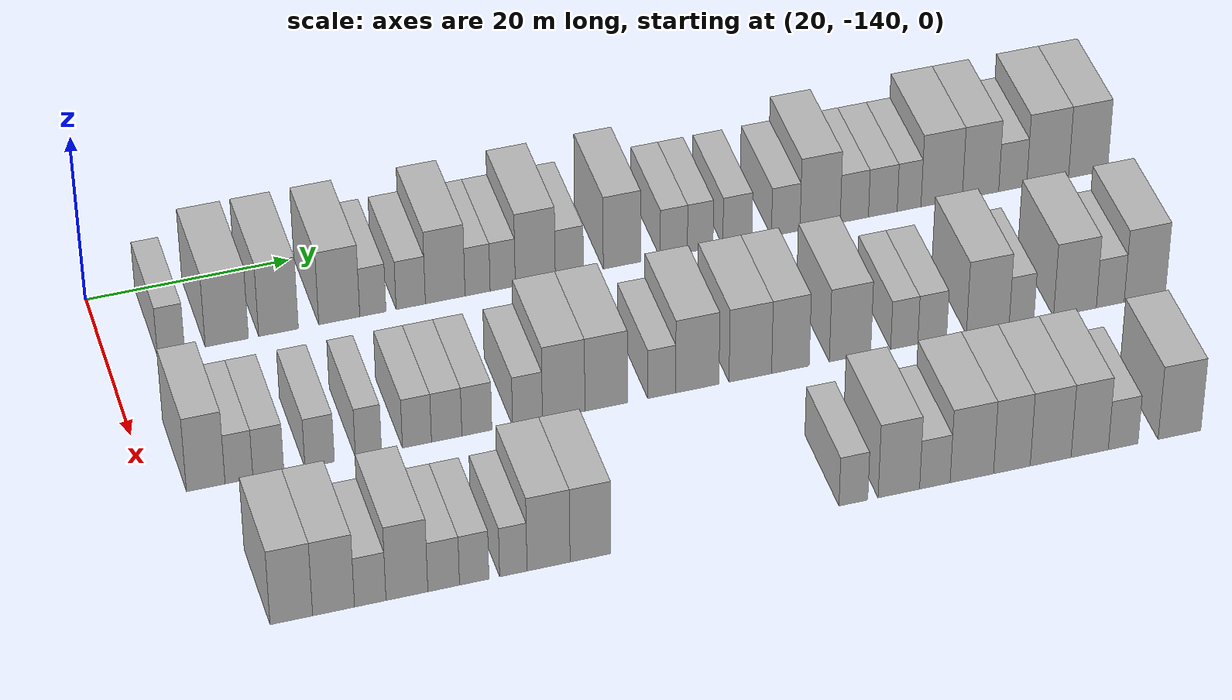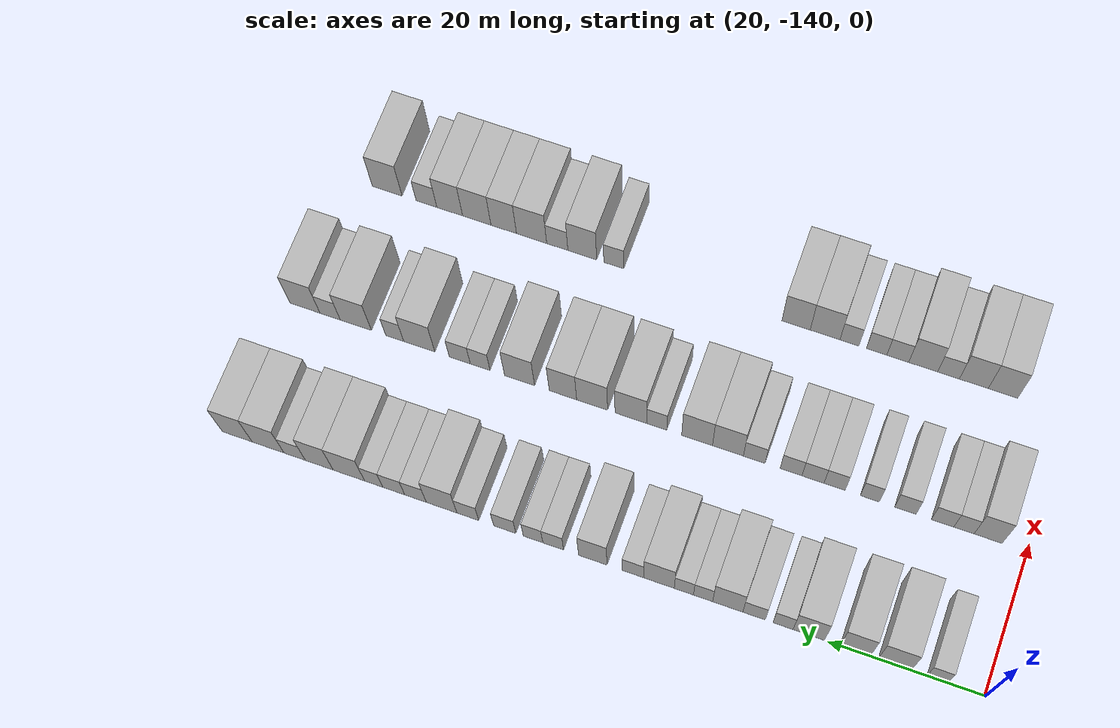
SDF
<sdf version="1.6">
 <world name="default">
  <model name="building_22">
   <static>1</static>
   <pose>25.0000 -133.8922 0 0.000000 0.000000 0.000000</pose>
   <link name="link">
    <pose>0 0 3.00 0 0 0</pose>
    <collision name="collision"><geometry><box><size>10.0000 2.6290 6.0000</size></box></geometry></collision>
    <visual name="visual">
     <cast_shadows>0</cast_shadows>
     <geometry><box><size>10.0000 2.6290 6.0000</size></box></geometry>
     <material>
      <script>
       <uri>model://HANNAS_wall/materials/scripts</uri>
       <uri>model://HANNAS_wall/materials/textures</uri>
       <name>vrc/HANNAS_wall</name>
      </script>
     </material>
    </visual>
   </link>
  </model>
  <model name="building_23">
   <static>1</static>
   <pose>25.0000 -128.4736 0 0.000000 0.000000 0.000000</pose>
   <link name="link">
    <pose>0 0 4.50 0 0 0</pose>
    <collision name="collision"><geometry><box><size>10.0000 4.2082 9.0000</size></box></geometry></collision>
    <visual name="visual">
     <cast_shadows>0</cast_shadows>
     <geometry><box><size>10.0000 4.2082 9.0000</size></box></geometry>
     <material>
      <script>
       <uri>model://HANNAS_wall/materials/scripts</uri>
       <uri>model://HANNAS_wall/materials/textures</uri>
       <name>vrc/HANNAS_wall</name>
      </script>
     </material>
    </visual>
   </link>
  </model>
  <model name="building_24">
   <static>1</static>
   <pose>25.0000 -123.4313 0 0.000000 0.000000 0.000000</pose>
   <link name="link">
    <pose>0 0 4.50 0 0 0</pose>
    <collision name="collision"><geometry><box><size>10.0000 3.8765 9.0000</size></box></geometry></collision>
    <visual name="visual">
     <cast_shadows>0</cast_shadows>
     <geometry><box><size>10.0000 3.8765 9.0000</size></box></geometry>
     <material>
      <script>
       <uri>model://HANNAS_wall/materials/scripts</uri>
       <uri>model://HANNAS_wall/materials/textures</uri>
       <name>vrc/HANNAS_wall</name>
      </script>
     </material>
    </visual>
   </link>
  </model>
  <model name="building_25">
   <static>1</static>
   <pose>25.0000 -117.4766 0 0.000000 0.000000 0.000000</pose>
   <link name="link">
    <pose>0 0 4.50 0 0 0</pose>
    <collision name="collision"><geometry><box><size>10.0000 4.0329 9.0000</size></box></geometry></collision>
    <visual name="visual">
     <cast_shadows>0</cast_shadows>
     <geometry><box><size>10.0000 4.0329 9.0000</size></box></geometry>
     <material>
      <script>
       <uri>model://HANNAS_wall/materials/scripts</uri>
       <uri>model://HANNAS_wall/materials/textures</uri>
       <name>vrc/HANNAS_wall</name>
      </script>
     </material>
    </visual>
   </link>
  </model>
  <model name="building_26">
   <static>1</static>
   <pose>25.0000 -114.1687 0 0.000000 0.000000 0.000000</pose>
   <link name="link">
    <pose>0 0 3.00 0 0 0</pose>
    <collision name="collision"><geometry><box><size>10.0000 2.5828 6.0000</size></box></geometry></collision>
    <visual name="visual">
     <cast_shadows>0</cast_shadows>
     <geometry><box><size>10.0000 2.5828 6.0000</size></box></geometry>
     <material>
      <script>
       <uri>model://HANNAS_wall/materials/scripts</uri>
       <uri>model://HANNAS_wall/materials/textures</uri>
       <name>vrc/HANNAS_wall</name>
      </script>
     </material>
    </visual>
   </link>
  </model>
  <model name="building_27">
   <static>1</static>
   <pose>25.0000 -110.4275 0 0.000000 0.000000 0.000000</pose>
   <link name="link">
    <pose>0 0 3.00 0 0 0</pose>
    <collision name="collision"><geometry><box><size>10.0000 2.8996 6.0000</size></box></geometry></collision>
    <visual name="visual">
     <cast_shadows>0</cast_shadows>
     <geometry><box><size>10.0000 2.8996 6.0000</size></box></geometry>
     <material>
      <script>
       <uri>model://HANNAS_wall/materials/scripts</uri>
       <uri>model://HANNAS_wall/materials/textures</uri>
       <name>vrc/HANNAS_wall</name>
      </script>
     </material>
    </visual>
   </link>
  </model>
  <model name="building_28">
   <static>1</static>
   <pose>25.0000 -107.0095 0 0.000000 0.000000 0.000000</pose>
   <link name="link">
    <pose>0 0 4.50 0 0 0</pose>
    <collision name="collision"><geometry><box><size>10.0000 3.9365 9.0000</size></box></geometry></collision>
    <visual name="visual">
     <cast_shadows>0</cast_shadows>
     <geometry><box><size>10.0000 3.9365 9.0000</size></box></geometry>
     <material>
      <script>
       <uri>model://HANNAS_wall/materials/scripts</uri>
       <uri>model://HANNAS_wall/materials/textures</uri>
       <name>vrc/HANNAS_wall</name>
      </script>
     </material>
    </visual>
   </link>
  </model>
  <model name="building_29">
   <static>1</static>
   <pose>25.0000 -103.7926 0 0.000000 0.000000 0.000000</pose>
   <link name="link">
    <pose>0 0 3.00 0 0 0</pose>
    <collision name="collision"><geometry><box><size>10.0000 2.4973 6.0000</size></box></geometry></collision>
    <visual name="visual">
     <cast_shadows>0</cast_shadows>
     <geometry><box><size>10.0000 2.4973 6.0000</size></box></geometry>
     <material>
      <script>
       <uri>model://HANNAS_wall/materials/scripts</uri>
       <uri>model://HANNAS_wall/materials/textures</uri>
       <name>vrc/HANNAS_wall</name>
      </script>
     </material>
    </visual>
   </link>
  </model>
  <model name="building_30">
   <static>1</static>
   <pose>25.0000 -101.2896 0 0.000000 0.000000 0.000000</pose>
   <link name="link">
    <pose>0 0 3.00 0 0 0</pose>
    <collision name="collision"><geometry><box><size>10.0000 2.5088 6.0000</size></box></geometry></collision>
    <visual name="visual">
     <cast_shadows>0</cast_shadows>
     <geometry><box><size>10.0000 2.5088 6.0000</size></box></geometry>
     <material>
      <script>
       <uri>model://HANNAS_wall/materials/scripts</uri>
       <uri>model://HANNAS_wall/materials/textures</uri>
       <name>vrc/HANNAS_wall</name>
      </script>
     </material>
    </visual>
   </link>
  </model>
  <model name="building_31">
   <static>1</static>
   <pose>25.0000 -98.0342 0 0.000000 0.000000 0.000000</pose>
   <link name="link">
    <pose>0 0 4.50 0 0 0</pose>
    <collision name="collision"><geometry><box><size>10.0000 4.0020 9.0000</size></box></geometry></collision>
    <visual name="visual">
     <cast_shadows>0</cast_shadows>
     <geometry><box><size>10.0000 4.0020 9.0000</size></box></geometry>
     <material>
      <script>
       <uri>model://HANNAS_wall/materials/scripts</uri>
       <uri>model://HANNAS_wall/materials/textures</uri>
       <name>vrc/HANNAS_wall</name>
      </script>
     </material>
    </visual>
   </link>
  </model>
  <model name="building_32">
   <static>1</static>
   <pose>25.0000 -94.6246 0 0.000000 0.000000 0.000000</pose>
   <link name="link">
    <pose>0 0 3.00 0 0 0</pose>
    <collision name="collision"><geometry><box><size>10.0000 2.8171 6.0000</size></box></geometry></collision>
    <visual name="visual">
     <cast_shadows>0</cast_shadows>
     <geometry><box><size>10.0000 2.8171 6.0000</size></box></geometry>
     <material>
      <script>
       <uri>model://HANNAS_wall/materials/scripts</uri>
       <uri>model://HANNAS_wall/materials/textures</uri>
       <name>vrc/HANNAS_wall</name>
      </script>
     </material>
    </visual>
   </link>
  </model>
  <model name="building_33">
   <static>1</static>
   <pose>25.0000 -89.3384 0 0.000000 0.000000 0.000000</pose>
   <link name="link">
    <pose>0 0 4.50 0 0 0</pose>
    <collision name="collision"><geometry><box><size>10.0000 3.7554 9.0000</size></box></geometry></collision>
    <visual name="visual">
     <cast_shadows>0</cast_shadows>
     <geometry><box><size>10.0000 3.7554 9.0000</size></box></geometry>
     <material>
      <script>
       <uri>model://HANNAS_wall/materials/scripts</uri>
       <uri>model://HANNAS_wall/materials/textures</uri>
       <name>vrc/HANNAS_wall</name>
      </script>
     </material>
    </visual>
   </link>
  </model>
  <model name="building_34">
   <static>1</static>
   <pose>25.0000 -84.0892 0 0.000000 0.000000 0.000000</pose>
   <link name="link">
    <pose>0 0 3.00 0 0 0</pose>
    <collision name="collision"><geometry><box><size>10.0000 2.7429 6.0000</size></box></geometry></collision>
    <visual name="visual">
     <cast_shadows>0</cast_shadows>
     <geometry><box><size>10.0000 2.7429 6.0000</size></box></geometry>
     <material>
      <script>
       <uri>model://HANNAS_wall/materials/scripts</uri>
       <uri>model://HANNAS_wall/materials/textures</uri>
       <name>vrc/HANNAS_wall</name>
      </script>
     </material>
    </visual>
   </link>
  </model>
  <model name="building_35">
   <static>1</static>
   <pose>25.0000 -81.4183 0 0.000000 0.000000 0.000000</pose>
   <link name="link">
    <pose>0 0 3.00 0 0 0</pose>
    <collision name="collision"><geometry><box><size>10.0000 2.5989 6.0000</size></box></geometry></collision>
    <visual name="visual">
     <cast_shadows>0</cast_shadows>
     <geometry><box><size>10.0000 2.5989 6.0000</size></box></geometry>
     <material>
      <script>
       <uri>model://HANNAS_wall/materials/scripts</uri>
       <uri>model://HANNAS_wall/materials/textures</uri>
       <name>vrc/HANNAS_wall</name>
      </script>
     </material>
    </visual>
   </link>
  </model>
  <model name="building_36">
   <static>1</static>
   <pose>25.0000 -77.6412 0 0.000000 0.000000 0.000000</pose>
   <link name="link">
    <pose>0 0 3.00 0 0 0</pose>
    <collision name="collision"><geometry><box><size>10.0000 2.9553 6.0000</size></box></geometry></collision>
    <visual name="visual">
     <cast_shadows>0</cast_shadows>
     <geometry><box><size>10.0000 2.9553 6.0000</size></box></geometry>
     <material>
      <script>
       <uri>model://HANNAS_wall/materials/scripts</uri>
       <uri>model://HANNAS_wall/materials/textures</uri>
       <name>vrc/HANNAS_wall</name>
      </script>
     </material>
    </visual>
   </link>
  </model>
  <model name="building_37">
   <static>1</static>
   <pose>25.0000 -72.7020 0 0.000000 0.000000 0.000000</pose>
   <link name="link">
    <pose>0 0 3.00 0 0 0</pose>
    <collision name="collision"><geometry><box><size>10.0000 2.9232 6.0000</size></box></geometry></collision>
    <visual name="visual">
     <cast_shadows>0</cast_shadows>
     <geometry><box><size>10.0000 2.9232 6.0000</size></box></geometry>
     <material>
      <script>
       <uri>model://HANNAS_wall/materials/scripts</uri>
       <uri>model://HANNAS_wall/materials/textures</uri>
       <name>vrc/HANNAS_wall</name>
      </script>
     </material>
    </visual>
   </link>
  </model>
  <model name="building_38">
   <static>1</static>
   <pose>25.0000 -69.1794 0 0.000000 0.000000 0.000000</pose>
   <link name="link">
    <pose>0 0 4.50 0 0 0</pose>
    <collision name="collision"><geometry><box><size>10.0000 4.1220 9.0000</size></box></geometry></collision>
    <visual name="visual">
     <cast_shadows>0</cast_shadows>
     <geometry><box><size>10.0000 4.1220 9.0000</size></box></geometry>
     <material>
      <script>
       <uri>model://HANNAS_wall/materials/scripts</uri>
       <uri>model://HANNAS_wall/materials/textures</uri>
       <name>vrc/HANNAS_wall</name>
      </script>
     </material>
    </visual>
   </link>
  </model>
  <model name="building_39">
   <static>1</static>
   <pose>25.0000 -65.6607 0 0.000000 0.000000 0.000000</pose>
   <link name="link">
    <pose>0 0 3.00 0 0 0</pose>
    <collision name="collision"><geometry><box><size>10.0000 2.9153 6.0000</size></box></geometry></collision>
    <visual name="visual">
     <cast_shadows>0</cast_shadows>
     <geometry><box><size>10.0000 2.9153 6.0000</size></box></geometry>
     <material>
      <script>
       <uri>model://HANNAS_wall/materials/scripts</uri>
       <uri>model://HANNAS_wall/materials/textures</uri>
       <name>vrc/HANNAS_wall</name>
      </script>
     </material>
    </visual>
   </link>
  </model>
  <model name="building_40">
   <static>1</static>
   <pose>25.0000 -62.7199 0 0.000000 0.000000 0.000000</pose>
   <link name="link">
    <pose>0 0 3.00 0 0 0</pose>
    <collision name="collision"><geometry><box><size>10.0000 2.9665 6.0000</size></box></geometry></collision>
    <visual name="visual">
     <cast_shadows>0</cast_shadows>
     <geometry><box><size>10.0000 2.9665 6.0000</size></box></geometry>
     <material>
      <script>
       <uri>model://HANNAS_wall/materials/scripts</uri>
       <uri>model://HANNAS_wall/materials/textures</uri>
       <name>vrc/HANNAS_wall</name>
      </script>
     </material>
    </visual>
   </link>
  </model>
  <model name="building_41">
   <static>1</static>
   <pose>25.0000 -60.0030 0 0.000000 0.000000 0.000000</pose>
   <link name="link">
    <pose>0 0 3.00 0 0 0</pose>
    <collision name="collision"><geometry><box><size>10.0000 2.4672 6.0000</size></box></geometry></collision>
    <visual name="visual">
     <cast_shadows>0</cast_shadows>
     <geometry><box><size>10.0000 2.4672 6.0000</size></box></geometry>
     <material>
      <script>
       <uri>model://HANNAS_wall/materials/scripts</uri>
       <uri>model://HANNAS_wall/materials/textures</uri>
       <name>vrc/HANNAS_wall</name>
      </script>
     </material>
    </visual>
   </link>
  </model>
  <model name="building_42">
   <static>1</static>
   <pose>25.0000 -56.6272 0 0.000000 0.000000 0.000000</pose>
   <link name="link">
    <pose>0 0 4.50 0 0 0</pose>
    <collision name="collision"><geometry><box><size>10.0000 4.2846 9.0000</size></box></geometry></collision>
    <visual name="visual">
     <cast_shadows>0</cast_shadows>
     <geometry><box><size>10.0000 4.2846 9.0000</size></box></geometry>
     <material>
      <script>
       <uri>model://HANNAS_wall/materials/scripts</uri>
       <uri>model://HANNAS_wall/materials/textures</uri>
       <name>vrc/HANNAS_wall</name>
      </script>
     </material>
    </visual>
   </link>
  </model>
  <model name="building_43">
   <static>1</static>
   <pose>25.0000 -52.5892 0 0.000000 0.000000 0.000000</pose>
   <link name="link">
    <pose>0 0 4.50 0 0 0</pose>
    <collision name="collision"><geometry><box><size>10.0000 3.7914 9.0000</size></box></geometry></collision>
    <visual name="visual">
     <cast_shadows>0</cast_shadows>
     <geometry><box><size>10.0000 3.7914 9.0000</size></box></geometry>
     <material>
      <script>
       <uri>model://HANNAS_wall/materials/scripts</uri>
       <uri>model://HANNAS_wall/materials/textures</uri>
       <name>vrc/HANNAS_wall</name>
      </script>
     </material>
    </visual>
   </link>
  </model>
  <model name="building_44">
   <static>1</static>
   <pose>25.0000 -49.2314 0 0.000000 0.000000 0.000000</pose>
   <link name="link">
    <pose>0 0 3.00 0 0 0</pose>
    <collision name="collision"><geometry><box><size>10.0000 2.9242 6.0000</size></box></geometry></collision>
    <visual name="visual">
     <cast_shadows>0</cast_shadows>
     <geometry><box><size>10.0000 2.9242 6.0000</size></box></geometry>
     <material>
      <script>
       <uri>model://HANNAS_wall/materials/scripts</uri>
       <uri>model://HANNAS_wall/materials/textures</uri>
       <name>vrc/HANNAS_wall</name>
      </script>
     </material>
    </visual>
   </link>
  </model>
  <model name="building_45">
   <static>1</static>
   <pose>25.0000 -45.5761 0 0.000000 0.000000 0.000000</pose>
   <link name="link">
    <pose>0 0 4.50 0 0 0</pose>
    <collision name="collision"><geometry><box><size>10.0000 4.3864 9.0000</size></box></geometry></collision>
    <visual name="visual">
     <cast_shadows>0</cast_shadows>
     <geometry><box><size>10.0000 4.3864 9.0000</size></box></geometry>
     <material>
      <script>
       <uri>model://HANNAS_wall/materials/scripts</uri>
       <uri>model://HANNAS_wall/materials/textures</uri>
       <name>vrc/HANNAS_wall</name>
      </script>
     </material>
    </visual>
   </link>
  </model>
  <model name="building_46">
   <static>1</static>
   <pose>25.0000 -41.3251 0 0.000000 0.000000 0.000000</pose>
   <link name="link">
    <pose>0 0 4.50 0 0 0</pose>
    <collision name="collision"><geometry><box><size>10.0000 4.1157 9.0000</size></box></geometry></collision>
    <visual name="visual">
     <cast_shadows>0</cast_shadows>
     <geometry><box><size>10.0000 4.1157 9.0000</size></box></geometry>
     <material>
      <script>
       <uri>model://HANNAS_wall/materials/scripts</uri>
       <uri>model://HANNAS_wall/materials/textures</uri>
       <name>vrc/HANNAS_wall</name>
      </script>
     </material>
    </visual>
   </link>
  </model>
  <model name="building_130">
   <static>1</static>
   <pose>44.0000 -134.8916 0 0.000000 0.000000 0.000000</pose>
   <link name="link">
    <pose>0 0 4.50 0 0 0</pose>
    <collision name="collision"><geometry><box><size>10.0000 3.6422 9.0000</size></box></geometry></collision>
    <visual name="visual">
     <cast_shadows>0</cast_shadows>
     <geometry><box><size>10.0000 3.6422 9.0000</size></box></geometry>
     <material>
      <script>
       <uri>model://HANNAS_wall/materials/scripts</uri>
       <uri>model://HANNAS_wall/materials/textures</uri>
       <name>vrc/HANNAS_wall</name>
      </script>
     </material>
    </visual>
   </link>
  </model>
  <model name="building_131">
   <static>1</static>
   <pose>44.0000 -131.7562 0 0.000000 0.000000 0.000000</pose>
   <link name="link">
    <pose>0 0 3.00 0 0 0</pose>
    <collision name="collision"><geometry><box><size>10.0000 2.6285 6.0000</size></box></geometry></collision>
    <visual name="visual">
     <cast_shadows>0</cast_shadows>
     <geometry><box><size>10.0000 2.6285 6.0000</size></box></geometry>
     <material>
      <script>
       <uri>model://HANNAS_wall/materials/scripts</uri>
       <uri>model://HANNAS_wall/materials/textures</uri>
       <name>vrc/HANNAS_wall</name>
      </script>
     </material>
    </visual>
   </link>
  </model>
  <model name="building_132">
   <static>1</static>
   <pose>44.0000 -128.9808 0 0.000000 0.000000 0.000000</pose>
   <link name="link">
    <pose>0 0 3.00 0 0 0</pose>
    <collision name="collision"><geometry><box><size>10.0000 2.9223 6.0000</size></box></geometry></collision>
    <visual name="visual">
     <cast_shadows>0</cast_shadows>
     <geometry><box><size>10.0000 2.9223 6.0000</size></box></geometry>
     <material>
      <script>
       <uri>model://HANNAS_wall/materials/scripts</uri>
       <uri>model://HANNAS_wall/materials/textures</uri>
       <name>vrc/HANNAS_wall</name>
      </script>
     </material>
    </visual>
   </link>
  </model>
  <model name="building_133">
   <static>1</static>
   <pose>44.0000 -124.1163 0 0.000000 0.000000 0.000000</pose>
   <link name="link">
    <pose>0 0 3.00 0 0 0</pose>
    <collision name="collision"><geometry><box><size>10.0000 2.8067 6.0000</size></box></geometry></collision>
    <visual name="visual">
     <cast_shadows>0</cast_shadows>
     <geometry><box><size>10.0000 2.8067 6.0000</size></box></geometry>
     <material>
      <script>
       <uri>model://HANNAS_wall/materials/scripts</uri>
       <uri>model://HANNAS_wall/materials/textures</uri>
       <name>vrc/HANNAS_wall</name>
      </script>
     </material>
    </visual>
   </link>
  </model>
  <model name="building_134">
   <static>1</static>
   <pose>44.0000 -119.4651 0 0.000000 0.000000 0.000000</pose>
   <link name="link">
    <pose>0 0 3.00 0 0 0</pose>
    <collision name="collision"><geometry><box><size>10.0000 2.4957 6.0000</size></box></geometry></collision>
    <visual name="visual">
     <cast_shadows>0</cast_shadows>
     <geometry><box><size>10.0000 2.4957 6.0000</size></box></geometry>
     <material>
      <script>
       <uri>model://HANNAS_wall/materials/scripts</uri>
       <uri>model://HANNAS_wall/materials/textures</uri>
       <name>vrc/HANNAS_wall</name>
      </script>
     </material>
    </visual>
   </link>
  </model>
  <model name="building_135">
   <static>1</static>
   <pose>44.0000 -114.8240 0 0.000000 0.000000 0.000000</pose>
   <link name="link">
    <pose>0 0 3.00 0 0 0</pose>
    <collision name="collision"><geometry><box><size>10.0000 2.7864 6.0000</size></box></geometry></collision>
    <visual name="visual">
     <cast_shadows>0</cast_shadows>
     <geometry><box><size>10.0000 2.7864 6.0000</size></box></geometry>
     <material>
      <script>
       <uri>model://HANNAS_wall/materials/scripts</uri>
       <uri>model://HANNAS_wall/materials/textures</uri>
       <name>vrc/HANNAS_wall</name>
      </script>
     </material>
    </visual>
   </link>
  </model>
  <model name="building_136">
   <static>1</static>
   <pose>44.0000 -111.9704 0 0.000000 0.000000 0.000000</pose>
   <link name="link">
    <pose>0 0 3.00 0 0 0</pose>
    <collision name="collision"><geometry><box><size>10.0000 2.9207 6.0000</size></box></geometry></collision>
    <visual name="visual">
     <cast_shadows>0</cast_shadows>
     <geometry><box><size>10.0000 2.9207 6.0000</size></box></geometry>
     <material>
      <script>
       <uri>model://HANNAS_wall/materials/scripts</uri>
       <uri>model://HANNAS_wall/materials/textures</uri>
       <name>vrc/HANNAS_wall</name>
      </script>
     </material>
    </visual>
   </link>
  </model>
  <model name="building_137">
   <static>1</static>
   <pose>44.0000 -109.0644 0 0.000000 0.000000 0.000000</pose>
   <link name="link">
    <pose>0 0 3.00 0 0 0</pose>
    <collision name="collision"><geometry><box><size>10.0000 2.8914 6.0000</size></box></geometry></collision>
    <visual name="visual">
     <cast_shadows>0</cast_shadows>
     <geometry><box><size>10.0000 2.8914 6.0000</size></box></geometry>
     <material>
      <script>
       <uri>model://HANNAS_wall/materials/scripts</uri>
       <uri>model://HANNAS_wall/materials/textures</uri>
       <name>vrc/HANNAS_wall</name>
      </script>
     </material>
    </visual>
   </link>
  </model>
  <model name="building_138">
   <static>1</static>
   <pose>44.0000 -104.1709 0 0.000000 0.000000 0.000000</pose>
   <link name="link">
    <pose>0 0 3.00 0 0 0</pose>
    <collision name="collision"><geometry><box><size>10.0000 2.8956 6.0000</size></box></geometry></collision>
    <visual name="visual">
     <cast_shadows>0</cast_shadows>
     <geometry><box><size>10.0000 2.8956 6.0000</size></box></geometry>
     <material>
      <script>
       <uri>model://HANNAS_wall/materials/scripts</uri>
       <uri>model://HANNAS_wall/materials/textures</uri>
       <name>vrc/HANNAS_wall</name>
      </script>
     </material>
    </visual>
   </link>
  </model>
  <model name="building_139">
   <static>1</static>
   <pose>44.0000 -100.6586 0 0.000000 0.000000 0.000000</pose>
   <link name="link">
    <pose>0 0 4.50 0 0 0</pose>
    <collision name="collision"><geometry><box><size>10.0000 4.1291 9.0000</size></box></geometry></collision>
    <visual name="visual">
     <cast_shadows>0</cast_shadows>
     <geometry><box><size>10.0000 4.1291 9.0000</size></box></geometry>
     <material>
      <script>
       <uri>model://HANNAS_wall/materials/scripts</uri>
       <uri>model://HANNAS_wall/materials/textures</uri>
       <name>vrc/HANNAS_wall</name>
      </script>
     </material>
    </visual>
   </link>
  </model>
  <model name="building_140">
   <static>1</static>
   <pose>44.0000 -96.5275 0 0.000000 0.000000 0.000000</pose>
   <link name="link">
    <pose>0 0 4.50 0 0 0</pose>
    <collision name="collision"><geometry><box><size>10.0000 4.1330 9.0000</size></box></geometry></collision>
    <visual name="visual">
     <cast_shadows>0</cast_shadows>
     <geometry><box><size>10.0000 4.1330 9.0000</size></box></geometry>
     <material>
      <script>
       <uri>model://HANNAS_wall/materials/scripts</uri>
       <uri>model://HANNAS_wall/materials/textures</uri>
       <name>vrc/HANNAS_wall</name>
      </script>
     </material>
    </visual>
   </link>
  </model>
  <model name="building_141">
   <static>1</static>
   <pose>44.0000 -91.0987 0 0.000000 0.000000 0.000000</pose>
   <link name="link">
    <pose>0 0 3.00 0 0 0</pose>
    <collision name="collision"><geometry><box><size>10.0000 2.7247 6.0000</size></box></geometry></collision>
    <visual name="visual">
     <cast_shadows>0</cast_shadows>
     <geometry><box><size>10.0000 2.7247 6.0000</size></box></geometry>
     <material>
      <script>
       <uri>model://HANNAS_wall/materials/scripts</uri>
       <uri>model://HANNAS_wall/materials/textures</uri>
       <name>vrc/HANNAS_wall</name>
      </script>
     </material>
    </visual>
   </link>
  </model>
  <model name="building_142">
   <static>1</static>
   <pose>44.0000 -87.6056 0 0.000000 0.000000 0.000000</pose>
   <link name="link">
    <pose>0 0 4.50 0 0 0</pose>
    <collision name="collision"><geometry><box><size>10.0000 4.2613 9.0000</size></box></geometry></collision>
    <visual name="visual">
     <cast_shadows>0</cast_shadows>
     <geometry><box><size>10.0000 4.2613 9.0000</size></box></geometry>
     <material>
      <script>
       <uri>model://HANNAS_wall/materials/scripts</uri>
       <uri>model://HANNAS_wall/materials/textures</uri>
       <name>vrc/HANNAS_wall</name>
      </script>
     </material>
    </visual>
   </link>
  </model>
  <model name="building_143">
   <static>1</static>
   <pose>44.0000 -82.3711 0 0.000000 0.000000 0.000000</pose>
   <link name="link">
    <pose>0 0 4.50 0 0 0</pose>
    <collision name="collision"><geometry><box><size>10.0000 4.2077 9.0000</size></box></geometry></collision>
    <visual name="visual">
     <cast_shadows>0</cast_shadows>
     <geometry><box><size>10.0000 4.2077 9.0000</size></box></geometry>
     <material>
      <script>
       <uri>model://HANNAS_wall/materials/scripts</uri>
       <uri>model://HANNAS_wall/materials/textures</uri>
       <name>vrc/HANNAS_wall</name>
      </script>
     </material>
    </visual>
   </link>
  </model>
  <model name="building_144">
   <static>1</static>
   <pose>44.0000 -78.4026 0 0.000000 0.000000 0.000000</pose>
   <link name="link">
    <pose>0 0 4.50 0 0 0</pose>
    <collision name="collision"><geometry><box><size>10.0000 3.7293 9.0000</size></box></geometry></collision>
    <visual name="visual">
     <cast_shadows>0</cast_shadows>
     <geometry><box><size>10.0000 3.7293 9.0000</size></box></geometry>
     <material>
      <script>
       <uri>model://HANNAS_wall/materials/scripts</uri>
       <uri>model://HANNAS_wall/materials/textures</uri>
       <name>vrc/HANNAS_wall</name>
      </script>
     </material>
    </visual>
   </link>
  </model>
  <model name="building_145">
   <static>1</static>
   <pose>44.0000 -72.4761 0 0.000000 0.000000 0.000000</pose>
   <link name="link">
    <pose>0 0 4.50 0 0 0</pose>
    <collision name="collision"><geometry><box><size>10.0000 4.1237 9.0000</size></box></geometry></collision>
    <visual name="visual">
     <cast_shadows>0</cast_shadows>
     <geometry><box><size>10.0000 4.1237 9.0000</size></box></geometry>
     <material>
      <script>
       <uri>model://HANNAS_wall/materials/scripts</uri>
       <uri>model://HANNAS_wall/materials/textures</uri>
       <name>vrc/HANNAS_wall</name>
      </script>
     </material>
    </visual>
   </link>
  </model>
  <model name="building_146">
   <static>1</static>
   <pose>44.0000 -67.0539 0 0.000000 0.000000 0.000000</pose>
   <link name="link">
    <pose>0 0 3.00 0 0 0</pose>
    <collision name="collision"><geometry><box><size>10.0000 2.7209 6.0000</size></box></geometry></collision>
    <visual name="visual">
     <cast_shadows>0</cast_shadows>
     <geometry><box><size>10.0000 2.7209 6.0000</size></box></geometry>
     <material>
      <script>
       <uri>model://HANNAS_wall/materials/scripts</uri>
       <uri>model://HANNAS_wall/materials/textures</uri>
       <name>vrc/HANNAS_wall</name>
      </script>
     </material>
    </visual>
   </link>
  </model>
  <model name="building_147">
   <static>1</static>
   <pose>44.0000 -64.2467 0 0.000000 0.000000 0.000000</pose>
   <link name="link">
    <pose>0 0 3.00 0 0 0</pose>
    <collision name="collision"><geometry><box><size>10.0000 2.8935 6.0000</size></box></geometry></collision>
    <visual name="visual">
     <cast_shadows>0</cast_shadows>
     <geometry><box><size>10.0000 2.8935 6.0000</size></box></geometry>
     <material>
      <script>
       <uri>model://HANNAS_wall/materials/scripts</uri>
       <uri>model://HANNAS_wall/materials/textures</uri>
       <name>vrc/HANNAS_wall</name>
      </script>
     </material>
    </visual>
   </link>
  </model>
  <model name="building_148">
   <static>1</static>
   <pose>44.0000 -58.6408 0 0.000000 0.000000 0.000000</pose>
   <link name="link">
    <pose>0 0 4.50 0 0 0</pose>
    <collision name="collision"><geometry><box><size>10.0000 4.3182 9.0000</size></box></geometry></collision>
    <visual name="visual">
     <cast_shadows>0</cast_shadows>
     <geometry><box><size>10.0000 4.3182 9.0000</size></box></geometry>
     <material>
      <script>
       <uri>model://HANNAS_wall/materials/scripts</uri>
       <uri>model://HANNAS_wall/materials/textures</uri>
       <name>vrc/HANNAS_wall</name>
      </script>
     </material>
    </visual>
   </link>
  </model>
  <model name="building_149">
   <static>1</static>
   <pose>44.0000 -55.2299 0 0.000000 0.000000 0.000000</pose>
   <link name="link">
    <pose>0 0 3.00 0 0 0</pose>
    <collision name="collision"><geometry><box><size>10.0000 2.5038 6.0000</size></box></geometry></collision>
    <visual name="visual">
     <cast_shadows>0</cast_shadows>
     <geometry><box><size>10.0000 2.5038 6.0000</size></box></geometry>
     <material>
      <script>
       <uri>model://HANNAS_wall/materials/scripts</uri>
       <uri>model://HANNAS_wall/materials/textures</uri>
       <name>vrc/HANNAS_wall</name>
      </script>
     </material>
    </visual>
   </link>
  </model>
  <model name="building_150">
   <static>1</static>
   <pose>44.0000 -49.8001 0 0.000000 0.000000 0.000000</pose>
   <link name="link">
    <pose>0 0 4.50 0 0 0</pose>
    <collision name="collision"><geometry><box><size>10.0000 4.3558 9.0000</size></box></geometry></collision>
    <visual name="visual">
     <cast_shadows>0</cast_shadows>
     <geometry><box><size>10.0000 4.3558 9.0000</size></box></geometry>
     <material>
      <script>
       <uri>model://HANNAS_wall/materials/scripts</uri>
       <uri>model://HANNAS_wall/materials/textures</uri>
       <name>vrc/HANNAS_wall</name>
      </script>
     </material>
    </visual>
   </link>
  </model>
  <model name="building_151">
   <static>1</static>
   <pose>44.0000 -46.1994 0 0.000000 0.000000 0.000000</pose>
   <link name="link">
    <pose>0 0 3.00 0 0 0</pose>
    <collision name="collision"><geometry><box><size>10.0000 2.8457 6.0000</size></box></geometry></collision>
    <visual name="visual">
     <cast_shadows>0</cast_shadows>
     <geometry><box><size>10.0000 2.8457 6.0000</size></box></geometry>
     <material>
      <script>
       <uri>model://HANNAS_wall/materials/scripts</uri>
       <uri>model://HANNAS_wall/materials/textures</uri>
       <name>vrc/HANNAS_wall</name>
      </script>
     </material>
    </visual>
   </link>
  </model>
  <model name="building_152">
   <static>1</static>
   <pose>44.0000 -42.6658 0 0.000000 0.000000 0.000000</pose>
   <link name="link">
    <pose>0 0 4.50 0 0 0</pose>
    <collision name="collision"><geometry><box><size>10.0000 4.2214 9.0000</size></box></geometry></collision>
    <visual name="visual">
     <cast_shadows>0</cast_shadows>
     <geometry><box><size>10.0000 4.2214 9.0000</size></box></geometry>
     <material>
      <script>
       <uri>model://HANNAS_wall/materials/scripts</uri>
       <uri>model://HANNAS_wall/materials/textures</uri>
       <name>vrc/HANNAS_wall</name>
      </script>
     </material>
    </visual>
   </link>
  </model>
  <model name="building_244">
   <static>1</static>
   <pose>63.0000 -131.4391 0 0.000000 0.000000 0.000000</pose>
   <link name="link">
    <pose>0 0 4.50 0 0 0</pose>
    <collision name="collision"><geometry><box><size>10.0000 3.9132 9.0000</size></box></geometry></collision>
    <visual name="visual">
     <cast_shadows>0</cast_shadows>
     <geometry><box><size>10.0000 3.9132 9.0000</size></box></geometry>
     <material>
      <script>
       <uri>model://HANNAS_wall/materials/scripts</uri>
       <uri>model://HANNAS_wall/materials/textures</uri>
       <name>vrc/HANNAS_wall</name>
      </script>
     </material>
    </visual>
   </link>
  </model>
  <model name="building_245">
   <static>1</static>
   <pose>63.0000 -127.5527 0 0.000000 0.000000 0.000000</pose>
   <link name="link">
    <pose>0 0 4.50 0 0 0</pose>
    <collision name="collision"><geometry><box><size>10.0000 3.8596 9.0000</size></box></geometry></collision>
    <visual name="visual">
     <cast_shadows>0</cast_shadows>
     <geometry><box><size>10.0000 3.8596 9.0000</size></box></geometry>
     <material>
      <script>
       <uri>model://HANNAS_wall/materials/scripts</uri>
       <uri>model://HANNAS_wall/materials/textures</uri>
       <name>vrc/HANNAS_wall</name>
      </script>
     </material>
    </visual>
   </link>
  </model>
  <model name="building_246">
   <static>1</static>
   <pose>63.0000 -124.1676 0 0.000000 0.000000 0.000000</pose>
   <link name="link">
    <pose>0 0 3.00 0 0 0</pose>
    <collision name="collision"><geometry><box><size>10.0000 2.9107 6.0000</size></box></geometry></collision>
    <visual name="visual">
     <cast_shadows>0</cast_shadows>
     <geometry><box><size>10.0000 2.9107 6.0000</size></box></geometry>
     <material>
      <script>
       <uri>model://HANNAS_wall/materials/scripts</uri>
       <uri>model://HANNAS_wall/materials/textures</uri>
       <name>vrc/HANNAS_wall</name>
      </script>
     </material>
    </visual>
   </link>
  </model>
  <model name="building_247">
   <static>1</static>
   <pose>63.0000 -120.7718 0 0.000000 0.000000 0.000000</pose>
   <link name="link">
    <pose>0 0 4.50 0 0 0</pose>
    <collision name="collision"><geometry><box><size>10.0000 3.8809 9.0000</size></box></geometry></collision>
    <visual name="visual">
     <cast_shadows>0</cast_shadows>
     <geometry><box><size>10.0000 3.8809 9.0000</size></box></geometry>
     <material>
      <script>
       <uri>model://HANNAS_wall/materials/scripts</uri>
       <uri>model://HANNAS_wall/materials/textures</uri>
       <name>vrc/HANNAS_wall</name>
      </script>
     </material>
    </visual>
   </link>
  </model>
  <model name="building_248">
   <static>1</static>
   <pose>63.0000 -117.3585 0 0.000000 0.000000 0.000000</pose>
   <link name="link">
    <pose>0 0 3.00 0 0 0</pose>
    <collision name="collision"><geometry><box><size>10.0000 2.9456 6.0000</size></box></geometry></collision>
    <visual name="visual">
     <cast_shadows>0</cast_shadows>
     <geometry><box><size>10.0000 2.9456 6.0000</size></box></geometry>
     <material>
      <script>
       <uri>model://HANNAS_wall/materials/scripts</uri>
       <uri>model://HANNAS_wall/materials/textures</uri>
       <name>vrc/HANNAS_wall</name>
      </script>
     </material>
    </visual>
   </link>
  </model>
  <model name="building_249">
   <static>1</static>
   <pose>63.0000 -114.5121 0 0.000000 0.000000 0.000000</pose>
   <link name="link">
    <pose>0 0 3.00 0 0 0</pose>
    <collision name="collision"><geometry><box><size>10.0000 2.7473 6.0000</size></box></geometry></collision>
    <visual name="visual">
     <cast_shadows>0</cast_shadows>
     <geometry><box><size>10.0000 2.7473 6.0000</size></box></geometry>
     <material>
      <script>
       <uri>model://HANNAS_wall/materials/scripts</uri>
       <uri>model://HANNAS_wall/materials/textures</uri>
       <name>vrc/HANNAS_wall</name>
      </script>
     </material>
    </visual>
   </link>
  </model>
  <model name="building_250">
   <static>1</static>
   <pose>63.0000 -110.8545 0 0.000000 0.000000 0.000000</pose>
   <link name="link">
    <pose>0 0 3.00 0 0 0</pose>
    <collision name="collision"><geometry><box><size>10.0000 2.5679 6.0000</size></box></geometry></collision>
    <visual name="visual">
     <cast_shadows>0</cast_shadows>
     <geometry><box><size>10.0000 2.5679 6.0000</size></box></geometry>
     <material>
      <script>
       <uri>model://HANNAS_wall/materials/scripts</uri>
       <uri>model://HANNAS_wall/materials/textures</uri>
       <name>vrc/HANNAS_wall</name>
      </script>
     </material>
    </visual>
   </link>
  </model>
  <model name="building_251">
   <static>1</static>
   <pose>63.0000 -107.5493 0 0.000000 0.000000 0.000000</pose>
   <link name="link">
    <pose>0 0 4.50 0 0 0</pose>
    <collision name="collision"><geometry><box><size>10.0000 4.0423 9.0000</size></box></geometry></collision>
    <visual name="visual">
     <cast_shadows>0</cast_shadows>
     <geometry><box><size>10.0000 4.0423 9.0000</size></box></geometry>
     <material>
      <script>
       <uri>model://HANNAS_wall/materials/scripts</uri>
       <uri>model://HANNAS_wall/materials/textures</uri>
       <name>vrc/HANNAS_wall</name>
      </script>
     </material>
    </visual>
   </link>
  </model>
  <model name="building_252">
   <static>1</static>
   <pose>63.0000 -103.6074 0 0.000000 0.000000 0.000000</pose>
   <link name="link">
    <pose>0 0 4.50 0 0 0</pose>
    <collision name="collision"><geometry><box><size>10.0000 3.8416 9.0000</size></box></geometry></collision>
    <visual name="visual">
     <cast_shadows>0</cast_shadows>
     <geometry><box><size>10.0000 3.8416 9.0000</size></box></geometry>
     <material>
      <script>
       <uri>model://HANNAS_wall/materials/scripts</uri>
       <uri>model://HANNAS_wall/materials/textures</uri>
       <name>vrc/HANNAS_wall</name>
      </script>
     </material>
    </visual>
   </link>
  </model>
  <model name="building_253">
   <static>1</static>
   <pose>63.0000 -78.5185 0 0.000000 0.000000 0.000000</pose>
   <link name="link">
    <pose>0 0 3.00 0 0 0</pose>
    <collision name="collision"><geometry><box><size>10.0000 2.7788 6.0000</size></box></geometry></collision>
    <visual name="visual">
     <cast_shadows>0</cast_shadows>
     <geometry><box><size>10.0000 2.7788 6.0000</size></box></geometry>
     <material>
      <script>
       <uri>model://HANNAS_wall/materials/scripts</uri>
       <uri>model://HANNAS_wall/materials/textures</uri>
       <name>vrc/HANNAS_wall</name>
      </script>
     </material>
    </visual>
   </link>
  </model>
  <model name="building_254">
   <static>1</static>
   <pose>63.0000 -74.1164 0 0.000000 0.000000 0.000000</pose>
   <link name="link">
    <pose>0 0 4.50 0 0 0</pose>
    <collision name="collision"><geometry><box><size>10.0000 4.0253 9.0000</size></box></geometry></collision>
    <visual name="visual">
     <cast_shadows>0</cast_shadows>
     <geometry><box><size>10.0000 4.0253 9.0000</size></box></geometry>
     <material>
      <script>
       <uri>model://HANNAS_wall/materials/scripts</uri>
       <uri>model://HANNAS_wall/materials/textures</uri>
       <name>vrc/HANNAS_wall</name>
      </script>
     </material>
    </visual>
   </link>
  </model>
  <model name="building_255">
   <static>1</static>
   <pose>63.0000 -70.6213 0 0.000000 0.000000 0.000000</pose>
   <link name="link">
    <pose>0 0 3.00 0 0 0</pose>
    <collision name="collision"><geometry><box><size>10.0000 2.9650 6.0000</size></box></geometry></collision>
    <visual name="visual">
     <cast_shadows>0</cast_shadows>
     <geometry><box><size>10.0000 2.9650 6.0000</size></box></geometry>
     <material>
      <script>
       <uri>model://HANNAS_wall/materials/scripts</uri>
       <uri>model://HANNAS_wall/materials/textures</uri>
       <name>vrc/HANNAS_wall</name>
      </script>
     </material>
    </visual>
   </link>
  </model>
  <model name="building_256">
   <static>1</static>
   <pose>63.0000 -67.0175 0 0.000000 0.000000 0.000000</pose>
   <link name="link">
    <pose>0 0 4.50 0 0 0</pose>
    <collision name="collision"><geometry><box><size>10.0000 4.2425 9.0000</size></box></geometry></collision>
    <visual name="visual">
     <cast_shadows>0</cast_shadows>
     <geometry><box><size>10.0000 4.2425 9.0000</size></box></geometry>
     <material>
      <script>
       <uri>model://HANNAS_wall/materials/scripts</uri>
       <uri>model://HANNAS_wall/materials/textures</uri>
       <name>vrc/HANNAS_wall</name>
      </script>
     </material>
    </visual>
   </link>
  </model>
  <model name="building_257">
   <static>1</static>
   <pose>63.0000 -63.0961 0 0.000000 0.000000 0.000000</pose>
   <link name="link">
    <pose>0 0 4.50 0 0 0</pose>
    <collision name="collision"><geometry><box><size>10.0000 3.6002 9.0000</size></box></geometry></collision>
    <visual name="visual">
     <cast_shadows>0</cast_shadows>
     <geometry><box><size>10.0000 3.6002 9.0000</size></box></geometry>
     <material>
      <script>
       <uri>model://HANNAS_wall/materials/scripts</uri>
       <uri>model://HANNAS_wall/materials/textures</uri>
       <name>vrc/HANNAS_wall</name>
      </script>
     </material>
    </visual>
   </link>
  </model>
  <model name="building_258">
   <static>1</static>
   <pose>63.0000 -59.2869 0 0.000000 0.000000 0.000000</pose>
   <link name="link">
    <pose>0 0 4.50 0 0 0</pose>
    <collision name="collision"><geometry><box><size>10.0000 4.0184 9.0000</size></box></geometry></collision>
    <visual name="visual">
     <cast_shadows>0</cast_shadows>
     <geometry><box><size>10.0000 4.0184 9.0000</size></box></geometry>
     <material>
      <script>
       <uri>model://HANNAS_wall/materials/scripts</uri>
       <uri>model://HANNAS_wall/materials/textures</uri>
       <name>vrc/HANNAS_wall</name>
      </script>
     </material>
    </visual>
   </link>
  </model>
  <model name="building_259">
   <static>1</static>
   <pose>63.0000 -55.4427 0 0.000000 0.000000 0.000000</pose>
   <link name="link">
    <pose>0 0 4.50 0 0 0</pose>
    <collision name="collision"><geometry><box><size>10.0000 3.6700 9.0000</size></box></geometry></collision>
    <visual name="visual">
     <cast_shadows>0</cast_shadows>
     <geometry><box><size>10.0000 3.6700 9.0000</size></box></geometry>
     <material>
      <script>
       <uri>model://HANNAS_wall/materials/scripts</uri>
       <uri>model://HANNAS_wall/materials/textures</uri>
       <name>vrc/HANNAS_wall</name>
      </script>
     </material>
    </visual>
   </link>
  </model>
  <model name="building_260">
   <static>1</static>
   <pose>63.0000 -52.1372 0 0.000000 0.000000 0.000000</pose>
   <link name="link">
    <pose>0 0 3.00 0 0 0</pose>
    <collision name="collision"><geometry><box><size>10.0000 2.9408 6.0000</size></box></geometry></collision>
    <visual name="visual">
     <cast_shadows>0</cast_shadows>
     <geometry><box><size>10.0000 2.9408 6.0000</size></box></geometry>
     <material>
      <script>
       <uri>model://HANNAS_wall/materials/scripts</uri>
       <uri>model://HANNAS_wall/materials/textures</uri>
       <name>vrc/HANNAS_wall</name>
      </script>
     </material>
    </visual>
   </link>
  </model>
  <model name="building_261">
   <static>1</static>
   <pose>63.0000 -46.5448 0 0.000000 0.000000 0.000000</pose>
   <link name="link">
    <pose>0 0 4.50 0 0 0</pose>
    <collision name="collision"><geometry><box><size>10.0000 4.2440 9.0000</size></box></geometry></collision>
    <visual name="visual">
     <cast_shadows>0</cast_shadows>
     <geometry><box><size>10.0000 4.2440 9.0000</size></box></geometry>
     <material>
      <script>
       <uri>model://HANNAS_wall/materials/scripts</uri>
       <uri>model://HANNAS_wall/materials/textures</uri>
       <name>vrc/HANNAS_wall</name>
      </script>
     </material>
    </visual>
   </link>
  </model>
 </world>
</sdf>
